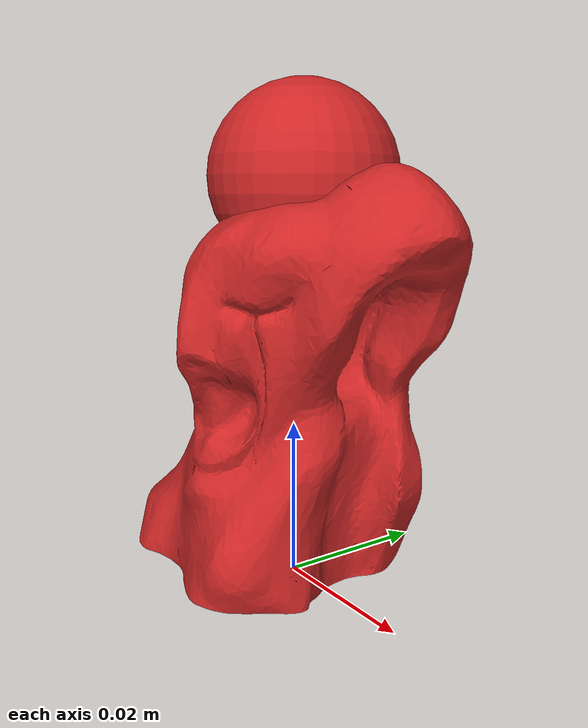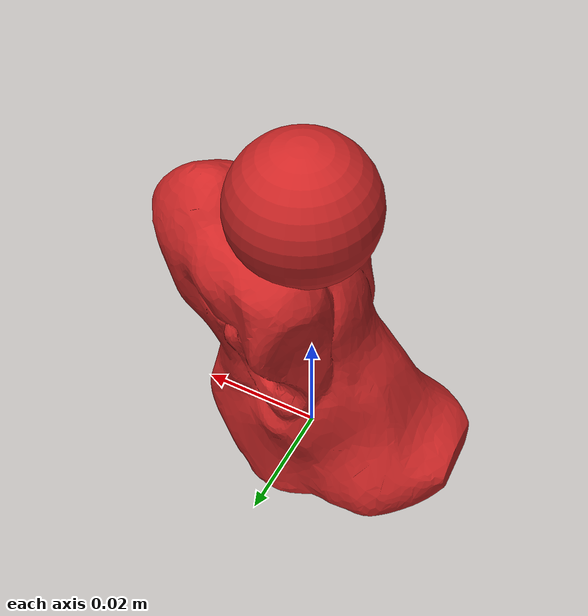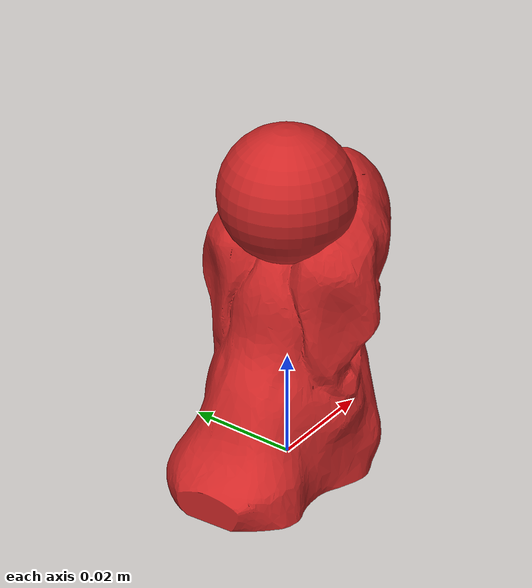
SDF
<?xml version="1.0" ?>
<sdf version="1.5">
  <model name="pawn">
    <static>true</static>
    <link name="pawn_link">
      <self_collide>true</self_collide>

      <collision name="collision">
        <geometry>
          <mesh>
            <uri>model://mahler_obj/pawn/meshes/pawn.dae</uri>
            <scale>0.6 0.6 0.6</scale>
          </mesh>
        </geometry>
      </collision>

      <visual name="visual">
        <geometry>
          <mesh>
            <uri>model://mahler_obj/pawn/meshes/pawn.dae</uri>
            <scale>0.6 0.6 0.6</scale>
          </mesh>
        </geometry>
        <material>
          <script>
            <uri>file://media/materials/scripts/gazebo.material</uri>
            <name>Gazebo/Red</name>
          </script>
        </material>
      </visual>
    </link>

  </model>
</sdf>
